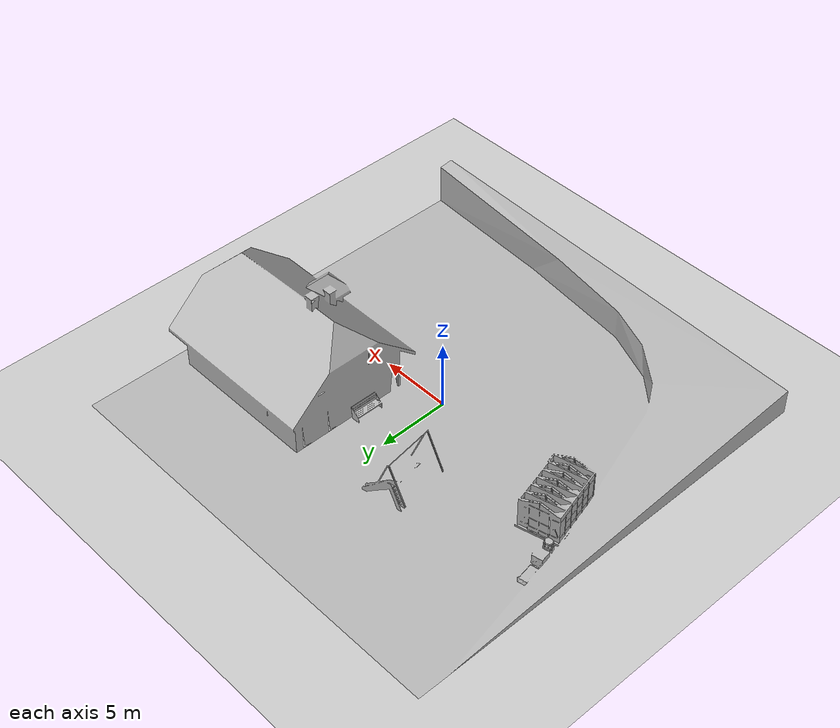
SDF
<?xml version="1.0" ?>
<sdf version="1.5">
  <world name="garden world">
      <physics name="ode_70iters" type="ode">
      <max_step_size>0.001</max_step_size>
      <real_time_update_rate>1000</real_time_update_rate>
      <ode>
        <solver>
          <type>quick</type>
          <iters>70</iters>
        </solver>
      </ode>
    </physics>
    <include> <!-- Add in a light source -->
      <uri>model://sun</uri>
    </include>

    <include>
      <uri>model://ground_plane</uri>
    </include>

    <include>
      <uri>model://garden_world</uri>
      <name>Garden</name>
      <pose>0 0 0 0 0 0</pose>

    </include>
    <!-- Define the latitude, longitude, and elevation -->
    <spherical_coordinates>
      <surface_model>EARTH_WGS84</surface_model>
      <latitude_deg>50.2414456</latitude_deg>
      <longitude_deg>6.6866212</longitude_deg>
      <elevation>450.0</elevation>
      <heading_deg>180</heading_deg>
    </spherical_coordinates>
  </world>
</sdf>

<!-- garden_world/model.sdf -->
<sdf version="1.5">
  <model name="garden_world">
    <static>true</static>
    <link name="garden_link">
        <collision name="garden_collision">
         <geometry>
            <mesh>
              <uri>model://garden_world/meshes/model.dae</uri>
            </mesh>
            <origin xyz="0 0 0" rpy="0 0 0"/>
        </geometry>
      </collision>

      <visual name="garden_mesh">
        <cast_shadows>true</cast_shadows>
        <geometry>
            <mesh>
                <uri>model://garden_world/meshes/model.dae</uri>
            </mesh>
        </geometry>
      </visual>
    </link>
  </model>
</sdf>
